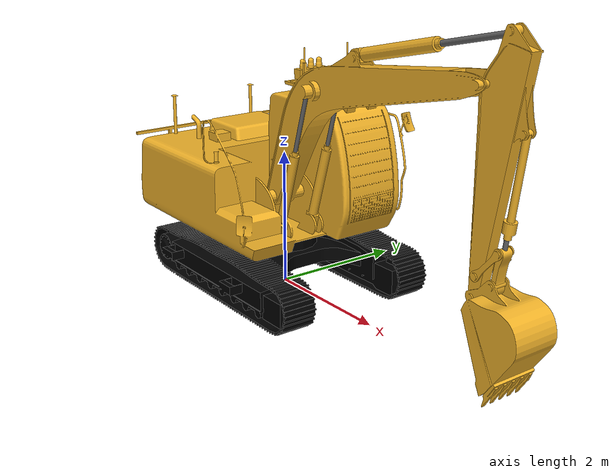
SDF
<?xml version="1.0" ?>
<!--
  Copyright 2024 DeepX, Inc. All rights reserved

  Backhoe excavator model for Sumitomo SH200.
  This model adds sensors to the base one.
-->
<sdf version="1.9">
    <model name='zx120'>
        <include merge="true">
            <uri>zx120_base</uri>
        </include>
    <plugin
            filename="gz-sim-joint-position-controller-system"
            name="gz::sim::systems::JointPositionController">
            <joint_name>body_joint</joint_name>
            <p_gain>1e6</p_gain>
            <i_gain>1</i_gain>
            <d_gain>1e6</d_gain>
            <i_max>10</i_max>
            <i_min>-10</i_min>
            <cmd_max>1e8</cmd_max>
            <cmd_min>-1e8</cmd_min>
        </plugin>

        <plugin
            filename="gz-sim-joint-position-controller-system"
            name="gz::sim::systems::JointPositionController">
            <joint_name>boom_joint</joint_name>
            <p_gain>1e7</p_gain>
            <i_gain>1</i_gain>
            <d_gain>2e6</d_gain>
            <i_max>10</i_max>
            <i_min>-10</i_min>
            <cmd_max>1e8</cmd_max>
            <cmd_min>-1e8</cmd_min>
        </plugin>

        <plugin
            filename="gz-sim-joint-position-controller-system"
            name="gz::sim::systems::JointPositionController">
            <joint_name>arm_joint</joint_name>
            <p_gain>1e8</p_gain>
            <i_gain>0.1</i_gain>
            <d_gain>1e6</d_gain>
            <i_max>10</i_max>
            <i_min>-10</i_min>
            <cmd_max>2.166e9</cmd_max>
            <cmd_min>-1e9</cmd_min>
        </plugin>

        <plugin
            filename="gz-sim-joint-position-controller-system"
            name="gz::sim::systems::JointPositionController">
            <joint_name>bucket_joint</joint_name>
            <p_gain>1e6</p_gain>
            <i_gain>0.5</i_gain>
            <d_gain>1e4</d_gain>
            <i_max>1</i_max>
            <i_min>-1</i_min>
            <cmd_max>2.3657e5</cmd_max>
            <cmd_min>-1e5</cmd_min>
        </plugin>

      <plugin name="gz::sim::systems::TrackedVehicle" filename="gz-sim-tracked-vehicle-system">
         <left_track><link>left_track</link></left_track><!--define-->
         <right_track><link>right_track</link></right_track><!--define-->
         <tracks_separation>2.16</tracks_separation><!--edit-->
         <tracks_height>2.0</tracks_height><!--edit-->
         <steering_efficiency>0.5</steering_efficiency><!--edit-->
      </plugin>

      <plugin name='gz::sim::systems::TrackController' filename='gz-sim-track-controller-system'>
         <link>left_track</link>
         <min_velocity>-3.25</min_velocity>
         <max_velocity>3.25</max_velocity>
      </plugin>
      <plugin name='gz::sim::systems::TrackController' filename='gz-sim-track-controller-system'>
         <link>right_track</link>
         <min_velocity>-3.25</min_velocity>
         <max_velocity>3.25</max_velocity>
      </plugin>

      <!-- Moving Forward: W -->
      <plugin filename="gz-sim-triggered-publisher-system"
              name="gz::sim::systems::TriggeredPublisher">
          <input type="gz.msgs.Int32" topic="/keyboard/keypress">
              <match field="data">87</match>
          </input>
          <output type="gz.msgs.Twist" topic="/model/zx120/cmd_vel">
              linear: {x: 3.25}, angular: {z: 0.0}
          </output>
      </plugin>

      <!-- Moving Backward: X -->
      <plugin filename="gz-sim-triggered-publisher-system"
              name="gz::sim::systems::TriggeredPublisher">
          <input type="gz.msgs.Int32" topic="/keyboard/keypress">
              <match field="data">88</match>
          </input>
          <output type="gz.msgs.Twist" topic="/model/zx120/cmd_vel">
              linear: {x: -3.25}, angular: {z: 0.0}
          </output>
      </plugin>

      <!-- Stop: S -->
      <plugin filename="gz-sim-triggered-publisher-system"
              name="gz::sim::systems::TriggeredPublisher">
          <input type="gz.msgs.Int32" topic="/keyboard/keypress">
              <match field="data">83</match>
          </input>
          <output type="gz.msgs.Twist" topic="/model/zx120/cmd_vel">
              linear: {x: 0.0}, angular: {z: 0.0}
          </output>
      </plugin>

      <!-- Left: A -->
      <plugin filename="gz-sim-triggered-publisher-system"
              name="gz::sim::systems::TriggeredPublisher">
          <input type="gz.msgs.Int32" topic="/keyboard/keypress">
              <match field="data">65</match>
          </input>
          <output type="gz.msgs.Twist" topic="/model/zx120/cmd_vel">
              linear: {x: 0.0}, angular: {z: 1.0}
          </output>
      </plugin>

      <!-- Right: D -->
      <plugin filename="gz-sim-triggered-publisher-system"
              name="gz::sim::systems::TriggeredPublisher">
          <input type="gz.msgs.Int32" topic="/keyboard/keypress">
              <match field="data">68</match>
          </input>
          <output type="gz.msgs.Twist" topic="/model/zx120/cmd_vel">
              linear: {x: 0.0}, angular: {z: -1.0}
          </output>
      </plugin>

      <!-- Forward Left: Q -->
      <plugin filename="gz-sim-triggered-publisher-system"
              name="gz::sim::systems::TriggeredPublisher">
          <input type="gz.msgs.Int32" topic="/keyboard/keypress">
              <match field="data">81</match>
          </input>
          <output type="gz.msgs.Twist" topic="/model/zx120/cmd_vel">
              linear: {x: 3.25}, angular: {z: 1.0}
          </output>
      </plugin>

      <!-- Forward Right: E -->
      <plugin filename="gz-sim-triggered-publisher-system"
              name="gz::sim::systems::TriggeredPublisher">
          <input type="gz.msgs.Int32" topic="/keyboard/keypress">
              <match field="data">69</match>
          </input>
          <output type="gz.msgs.Twist" topic="/model/zx120/cmd_vel">
              linear: {x: 3.25}, angular: {z: -1.0}
          </output>
      </plugin>

      <!-- Back Left: Z -->
      <plugin filename="gz-sim-triggered-publisher-system"
              name="gz::sim::systems::TriggeredPublisher">
          <input type="gz.msgs.Int32" topic="/keyboard/keypress">
              <match field="data">90</match>
          </input>
          <output type="gz.msgs.Twist" topic="/model/zx120/cmd_vel">
              linear: {x: -3.25}, angular: {z: 1.0}
          </output>
      </plugin>

      <!-- Back Right: C -->
      <plugin filename="gz-sim-triggered-publisher-system"
              name="gz::sim::systems::TriggeredPublisher">
          <input type="gz.msgs.Int32" topic="/keyboard/keypress">
              <match field="data">67</match>
          </input>
          <output type="gz.msgs.Twist" topic="/model/zx120/cmd_vel">
              linear: {x: -3.25}, angular: {z: -1.0}
          </output>
      </plugin>

    </model>
</sdf>

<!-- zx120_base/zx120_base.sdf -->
<!--
  Copyright 2024 DeepX, Inc. All rights reserved
-->
<sdf version="1.9">
    <model name='zx120_base'>
      <pose>0 0 0 0 0 0</pose>
      <link name='caterpillar_link'>
        <pose>0 0 0 0 0 0</pose>
        <inertial>
            <pose>-0.155869 0 0.358402 0 0 0</pose>
            <mass>50000</mass>
            <inertia>
              <ixx>1.0</ixx>
              <ixy>0</ixy>
              <ixz>0</ixz>
              <iyy>1.0</iyy>
              <iyz>0</iyz>
              <izz>1.0</izz>
            </inertia>
        </inertial>
        <visual name='caterpillar_visual'>
          <geometry>
            <mesh>
              <uri>./meshes/caterpillar.dae</uri>
            </mesh>
          </geometry>
          <material>
            <ambient>0.0 0.0 0.0 1.0</ambient>
            <diffuse>0.0 0.0 0.0 1.0</diffuse>
            <specular>0.2 0.2 0.2 1.0</specular>
          </material>
        </visual>
      </link>

      <joint name='body_joint' type='revolute'>
        <pose relative_to='caterpillar_link'>0 0 1 0 0 0</pose>
        <parent>caterpillar_link</parent>
        <child>body_link</child>
        <axis>
          <xyz>0 0 1</xyz>
          <limit>
            <!--Effort to avoid velocity control violating the kinematics!-->
            <effort>1.0e8</effort>
            <velocity>0.2</velocity>
          </limit>
        </axis>
      </joint>

    <link name='body_link'>
        <pose relative_to='body_joint'>0 0 0 0 0 0</pose>
        <inertial>
            <pose>-0.501522 0 1.191169 0 0 0</pose>
            <mass>5000</mass>
            <inertia>
              <ixx>1.0</ixx>
              <ixy>0</ixy>
              <ixz>0</ixz>
              <iyy>1.0</iyy>
              <iyz>0</iyz>
              <izz>1.0</izz>
            </inertia>
        </inertial>
        <visual name='body_visual'>
          <geometry>
            <mesh>
              <uri>./meshes/body.dae</uri>
            </mesh>
          </geometry>
          <material>
            <ambient>0.953 0.707 0.164 1.0</ambient>
            <diffuse>0.953 0.707 0.164 1.0</diffuse>
            <specular>0.2 0.2 0.2 1.0</specular>
          </material>
        </visual>
      </link>
      <joint name='boom_joint' type='revolute'>
        <pose relative_to='body_joint'>0.14 -0.16443 0.424 0 1.04719732679 0</pose>
        <parent>body_link</parent>
        <child>boom_link</child>
        <axis>
          <xyz>0 1 0</xyz>
          <limit>
          <!--Effort to avoid velocity control violating the kinematics!-->
            <effort>1.0e8</effort>
            <velocity>0.6159937255</velocity>
            <lower>-0.6981314764</lower>
            <upper>1.29154387088</upper>
          </limit>
        </axis>
      </joint>

    <link name='boom_link'>
        <pose relative_to='boom_joint'>0 0 0 0 -1.185 0</pose>
        <inertial>
            <pose>2.091062 0.055029 0.975556 0 0 0</pose>
            <mass>1010</mass>
            <inertia>
              <ixx>103.9</ixx>
              <ixy>0.0</ixy>
              <ixz>44.8</ixz>
              <iyy>1574.1</iyy>
              <iyz>0.0</iyz>
              <izz>1489.6</izz>
            </inertia>
        </inertial>
        <visual name='boom_visual'>
          <geometry>
            <mesh>
              <uri>./meshes/boom.dae</uri>
            </mesh>
          </geometry>
          <material>
            <ambient>0.953 0.707 0.164 1.0</ambient>
            <diffuse>0.953 0.707 0.164 1.0</diffuse>
            <specular>0.2 0.2 0.2 1.0</specular>
          </material>
        </visual>
        <collision name="boom_collision">
          <pose relative_to="boom_link">0 0 0 0 0 0</pose>
          <geometry>
            <mesh>
              <scale>1 1 1</scale>
              <uri>./meshes/boom.dae</uri>
            </mesh>
          </geometry>
        </collision>
      </link>

      <joint name='boom_cylinder_joint' type='revolute'>
        <pose relative_to='body_joint'>0.494531 -0.162387 0 0 -1.274 0</pose>
        <parent>body_link</parent>
        <child>boom_cylinder_link</child>
        <axis>
          <xyz>0 1 0</xyz>
        </axis>
      </joint>

      <link name='boom_cylinder_link'>
        <pose relative_to='boom_cylinder_joint'>0 0 0 0 0 0</pose>
        <inertial>
            <pose>0.726641 0 0 0 0 0</pose>
            <mass>131.62</mass>
            <inertia>
              <ixx>9.216249</ixx>
              <ixy>0</ixy>
              <ixz>0</ixz>
              <iyy>27.606432</iyy>
              <iyz>0</iyz>
              <izz>36.503907</izz>
            </inertia>
        </inertial>
        <visual name='boom_cylinder_visual'>
          <geometry>
            <mesh>
              <uri>./meshes/boom_cylinders.dae</uri>
            </mesh>
          </geometry>
          <material>
            <ambient>0.953 0.707 0.164 1.0</ambient>
            <diffuse>0.953 0.707 0.164 1.0</diffuse>
            <specular>0.2 0.2 0.2 1.0</specular>
          </material>
        </visual>
      </link>

      <joint name='boom_piston_joint' type='prismatic'>
        <pose relative_to='boom_cylinder_joint'>0.2 0 0 0 0 0</pose>
        <parent>boom_cylinder_link</parent>
        <child>boom_piston_link</child>
        <axis>
          <xyz>1 0 0</xyz>
          <limit>
            <!--Effort to avoid velocity control violating the kinematics!-->
            <effort>1.0e8</effort>
            <lower>-10</lower>
            <upper>10</upper>
          </limit>
        </axis>
      </joint>

      <link name='boom_piston_link'>
        <pose relative_to='boom_piston_joint'>0 0 0 0 0 0</pose>
        <inertial>
            <pose>0.833213 0 0 0 0 0</pose>
            <mass>98.0056</mass>
            <inertia>
              <ixx>6.6836</ixx>
              <ixy>0</ixy>
              <ixz>0</ixz>
              <iyy>22.5995</iyy>
              <iyz>0</iyz>
              <izz>29.2292</izz>
            </inertia>
        </inertial>
        <visual name='boom_piston_visual'>
          <geometry>
            <mesh>
              <uri>./meshes/boom_pistons.dae</uri>
            </mesh>
          </geometry>
          <material>
            <ambient>0.4 0.4 0.4 1.0</ambient>
            <diffuse>0.4 0.4 0.4 1.0</diffuse>
            <specular>1.0 1.0 1.0 1.0</specular>
          </material>
        </visual>
      </link>

      <joint name='boom_piston_constraint' type='ball'>
        <pose relative_to='boom_piston_joint'>1.984 0 0 0 0 0</pose>
        <parent>boom_piston_link</parent>
        <child>boom_link</child>
      </joint>

      <joint name='arm_joint' type='revolute'>
        <pose relative_to='boom_joint'>0 0 4.6 0 -0.89 0</pose>
        <axis>
          <xyz>0 1 0</xyz>
          <limit>
          <!--Effort to avoid velocity control violating the kinematics!-->
            <effort>1.0e8</effort>
            <velocity>0.5</velocity>
            <lower>-1.423598775598</lower>
            <upper>0.705</upper>
          </limit>
        </axis>
        <parent>boom_link</parent>
        <child>arm_link</child>
      </joint>

      <link name='arm_link'>
        <pose relative_to='arm_joint'>0 0 0 0 0 0</pose>
        <inertial>
            <pose>0.774653 0.0 0.171092 0 0 0</pose>
            <mass>480</mass>
            <inertia>
              <ixx>14.24</ixx>
              <ixy>0.0</ixy>
              <ixz>31.36</ixz>
              <iyy>319.92</iyy>
              <iyz>0.0</iyz>
              <izz>309.47</izz>
            </inertia>
        </inertial>
        <visual name='arm_visual'>
          <pose>0 0 0 0 0 0</pose>
          <geometry>
            <mesh>
              <uri>./meshes/arm.dae</uri>
            </mesh>
          </geometry>
          <material>
            <ambient>0.953 0.707 0.164 1.0</ambient>
            <diffuse>0.953 0.707 0.164 1.0</diffuse>
            <specular>0.2 0.2 0.2 1.0</specular>
          </material>
        </visual>
        <collision name="arm_collision">
          <pose relative_to="arm_link">0 0 0 0 0 0</pose>
          <geometry>
            <mesh>
              <scale>1 1 1</scale>
              <uri>./meshes/arm.dae</uri>
            </mesh>
          </geometry>
        </collision>
      </link>

      <joint name='arm_cylinder_joint' type='revolute'>
        <pose relative_to='boom_joint'>-1.09754 0 2.66447 0 -1.28 0</pose>
        <axis>
          <xyz>0 1 0</xyz>
        </axis>
        <parent>boom_link</parent>
        <child>arm_cylinder_link</child>
      </joint>

      <link name='arm_cylinder_link'>
        <pose relative_to='arm_cylinder_joint'>0 0 0 0 0 0</pose>
        <inertial>
            <pose>0.789573 0 0 0 0 0</pose>
            <mass>65.81</mass>
            <inertia>
              <ixx>0.01</ixx>
              <ixy>0</ixy>
              <ixz>0</ixz>
              <iyy>9.95</iyy>
              <iyz>0</iyz>
              <izz>9.95</izz>
            </inertia>
        </inertial>
        <visual name='arm_cylinder_visual'>
          <geometry>
            <mesh>
              <uri>./meshes/arm_cylinder.dae</uri>
            </mesh>
          </geometry>
          <material>
            <ambient>0.953 0.707 0.164 1.0</ambient>
            <diffuse>0.953 0.707 0.164 1.0</diffuse>
            <specular>0.2 0.2 0.2 1.0</specular>
          </material>
        </visual>
      </link>

      <joint name='arm_piston_joint' type='prismatic'>
        <pose relative_to='arm_cylinder_joint'>1.15 0 0 0 0 0</pose>
        <parent>arm_cylinder_link</parent>
        <child>arm_piston_link</child>
        <axis>
          <xyz>1 0 0</xyz>
          <limit>
            <!--Effort to avoid velocity control violating the kinematics!-->
            <effort>1.0e8</effort>
            <lower>-10</lower>
            <upper>10</upper>
          </limit>
        </axis>
      </joint>

      <link name='arm_piston_link'>
        <pose relative_to='arm_piston_joint'>0 0 0 0 0 0</pose>
        <inertial>
            <pose>0.783644 0.0 0.0 0 0 0</pose>
            <mass>48.18</mass>
            <inertia>
              <ixx>0.01</ixx>
              <ixy>0</ixy>
              <ixz>0</ixz>
              <iyy>9.83</iyy>
              <iyz>0</iyz>
              <izz>9.83</izz>
            </inertia>
        </inertial>
        <visual name='arm_piston_visual'>
          <geometry>
            <mesh>
              <uri>./meshes/arm_piston.dae</uri>
            </mesh>
          </geometry>
          <material>
            <ambient>0.4 0.4 0.4 1.0</ambient>
            <diffuse>0.4 0.4 0.4 1.0</diffuse>
            <specular>1.0 1.0 1.0 1.0</specular>
          </material>
        </visual>
      </link>

      <joint name='arm_piston_constraint' type='ball'>
        <pose relative_to='arm_piston_joint'>1.25 0 0 0 0 0</pose>
        <parent>arm_piston_link</parent>
        <child>arm_link</child>
      </joint>

      <joint name='bucket_joint' type='revolute'>
        <pose relative_to='arm_joint'>0.356544 0 -2.46213 0 -2.897 0</pose>
        <axis>
          <xyz>0 1 0</xyz>
          <limit>
          <!--Effort to avoid velocity control violating the kinematics!-->
            <effort>1.0e8</effort>
            <velocity>0.5</velocity>
            <lower>-0.1</lower>
            <upper>2.97177</upper>
          </limit>
        </axis>
        <parent>arm_link</parent>
        <child>bucket_link</child>
      </joint>

      <link name='bucket_link'>
        <pose relative_to='bucket_joint'>0 0 0 0 0 0</pose>
        <inertial>
            <pose>0.560165 -0.000003 0.267409 0 0 0</pose>
            <mass>351.5</mass>
            <inertia>
              <ixx>51.39</ixx>
              <ixy>0.0</ixy>
              <ixz>10.40</ixz>
              <iyy>77.64</iyy>
              <iyz>0.0</iyz>
              <izz>91.99</izz>
            </inertia>
        </inertial>
        <visual name='bucket_visual'>
          <pose>0 0 0 0 0 0</pose>
          <geometry>
            <mesh>
              <uri>./meshes/bucket.dae</uri>
            </mesh>
          </geometry>
          <material>
            <ambient>0.953 0.707 0.164 1.0</ambient>
            <diffuse>0.953 0.707 0.164 1.0</diffuse>
            <specular>0.2 0.2 0.2 1.0</specular>
          </material>
        </visual>
        <collision name="bucket_collision">
          <pose relative_to="bucket_link">0 0 0 0 0 0</pose>
          <geometry>
            <mesh>
              <scale>1 1 1</scale>
              <uri>./meshes/bucket.dae</uri>
            </mesh>
          </geometry>
        </collision>
      </link>

      <joint name='bucket_end_joint' type='fixed'>
        <pose relative_to="bucket_joint">0 0 1.23 0 0.872664625997 0</pose>
        <parent>bucket_link</parent>
        <child>bucket_end_link</child>
      </joint>

        <link name='bucket_end_link'>
          <pose relative_to="bucket_end_joint">0 0 0 0 0 0</pose>
          <inertial>
            <mass>0.001</mass>
            <inertia>
              <ixx>1e-6</ixx>
              <ixy>0.0</ixy>
              <ixz>0.0</ixz>
              <iyy>1e-6</iyy>
              <iyz>0.0</iyz>
              <izz>1e-6</izz>
            </inertia>
          </inertial>
        </link>

        <joint name='bucket_cylinder_joint' type='revolute'>
        <pose relative_to='arm_joint'>0.610882 0 -0.34393 0 1.5533430343 0</pose>
        <axis>
          <xyz>0 1 0</xyz>
        </axis>
        <parent>arm_link</parent>
        <child>bucket_cylinder_link</child>
      </joint>

      <link name='bucket_cylinder_link'>
        <pose relative_to='bucket_cylinder_joint'>0 0 0 0 0 0</pose>
        <inertial>
            <pose>0.726641 0.00003 0.0 0 0 0</pose>
            <mass>65.81</mass>
            <inertia>
              <ixx>0.01</ixx>
              <ixy>0</ixy>
              <ixz>0</ixz>
              <iyy>9.95</iyy>
              <iyz>0</iyz>
              <izz>9.95</izz>
            </inertia>
        </inertial>
        <visual name='bucket_cylinder_visual'>
          <geometry>
            <mesh>
              <uri>./meshes/bucket_cylinder.dae</uri>
            </mesh>
          </geometry>
          <material>
            <ambient>0.953 0.707 0.164 1.0</ambient>
            <diffuse>0.953 0.707 0.164 1.0</diffuse>
            <specular>0.2 0.2 0.2 1.0</specular>
          </material>
        </visual>
      </link>

      <joint name='bucket_piston_joint' type='prismatic'>
        <pose relative_to='bucket_cylinder_joint'>0.256193 0 0 0 0 0</pose>
        <axis>
          <xyz>1 0 0</xyz>
          <limit>
            <!--Effort to avoid velocity control violating the kinematics!-->
            <effort>1.0e8</effort>
            <lower>-10</lower>
            <upper>10</upper>
          </limit>
        </axis>
        <parent>bucket_cylinder_link</parent>
        <child>bucket_piston_link</child>
      </joint>

      <link name='bucket_piston_link'>
        <pose relative_to='bucket_piston_joint'>0 0 0 0 0 0</pose>
        <inertial>
            <pose>0.818208 0.0 0.0 0 0 0</pose>
            <mass>48.19</mass>
            <inertia>
              <ixx>0.01</ixx>
              <ixy>0</ixy>
              <ixz>0</ixz>
              <iyy>9.83</iyy>
              <iyz>0</iyz>
              <izz>9.83</izz>
            </inertia>
        </inertial>
        <visual name='bucket_piston_visual'>
          <geometry>
            <mesh>
              <uri>./meshes/bucket_piston.dae</uri>
            </mesh>
          </geometry>
          <material>
            <ambient>0.4 0.4 0.4 1.0</ambient>
            <diffuse>0.4 0.4 0.4 1.0</diffuse>
            <specular>1.0 1.0 1.0 1.0</specular>
          </material>
        </visual>
      </link>

      <joint name='bucket_piston_constraint' type='ball'>
        <pose relative_to='bucket_piston_joint'>1.195 0 0 0 0 0</pose>
        <parent>bucket_piston_link</parent>
        <child>bucket_h_linkage_link</child>
      </joint>

      <joint name='bucket_side_linkage_joint' type='revolute'>
        <pose relative_to='arm_joint'>0.337582 0 -2.20266 0 -0.9948 0</pose>
        <axis>
          <xyz>0 -1 0</xyz>
        </axis>
        <parent>arm_link</parent>
        <child>bucket_side_linkage_link</child>
      </joint>

      <link name='bucket_side_linkage_link'>
        <pose relative_to='bucket_side_linkage_joint'>0 0 0 0 0 0</pose>
        <inertial>
            <pose>0.290049 0.0 0.0 0 0 0</pose>
            <mass>16.3471</mass>
            <inertia>
              <ixx>0.2849</ixx>
              <ixy>0</ixy>
              <ixz>0</ixz>
              <iyy>0.7623</iyy>
              <iyz>0</iyz>
              <izz>1.0241</izz>
            </inertia>
        </inertial>
        <visual name='bucket_side_linkage_visual'>
          <geometry>
            <mesh>
              <uri>./meshes/bucket_linkages_side.dae</uri>
            </mesh>
          </geometry>
          <material>
            <ambient>0.953 0.707 0.164 1.0</ambient>
            <diffuse>0.953 0.707 0.164 1.0</diffuse>
            <specular>0.2 0.2 0.2 1.0</specular>
          </material>
        </visual>
      </link>

      <joint name='bucket_h_linkage_joint' type='revolute'>
        <pose relative_to='bucket_side_linkage_joint'>0.492806 0 -0.00206 0 2.6 0</pose>
        <axis>
          <xyz>0 1 0</xyz>
        </axis>
        <parent>bucket_side_linkage_link</parent>
        <child>bucket_h_linkage_link</child>
      </joint>

      <link name='bucket_h_linkage_link'>
        <pose relative_to='bucket_h_linkage_joint'>0 0 0 0 0 0</pose>
        <inertial>
            <pose>0.254500 0.0 0.0 0 0 0</pose>
            <mass>57.45</mass>
            <inertia>
              <ixx>0.29</ixx>
              <ixy>0.0</ixy>
              <ixz>0.0</ixz>
              <iyy>1.63</iyy>
              <iyz>0.0</iyz>
              <izz>1.88</izz>
            </inertia>
        </inertial>
        <visual name='bucket_h_linkage_visual'>
          <geometry>
            <mesh>
              <uri>./meshes/bucket_linkage_H_link.dae</uri>
            </mesh>
          </geometry>
          <material>
            <ambient>0.953 0.707 0.164 1.0</ambient>
            <diffuse>0.953 0.707 0.164 1.0</diffuse>
            <specular>0.2 0.2 0.2 1.0</specular>
          </material>
        </visual>
      </link>

      <joint name='bucket_linkage_constraint' type='ball'>
        <pose relative_to='bucket_h_linkage_joint'>0.42 0 0 0 0 0</pose>
        <parent>bucket_h_linkage_link</parent>
        <child>bucket_link</child>
      </joint>

      <link name='left_track'>
         <pose>0 0.965 0.35 0 0 0</pose>
         <gravity>1</gravity>
         <kinematic>0</kinematic>
         <!-- Debug visual -->

         <collision name='left_track_collision'>
            <pose>0 0 0 0 0 0</pose>
            <geometry>
               <box>
                  <size>3.6 0.6 0.7</size>
               </box>
            </geometry>
            <surface>
               <friction>
                  <ode>
                     <mu>0.7</mu>
                     <mu2>150</mu2>
                     <fdir1>0 1 0</fdir1>
                  </ode>
               </friction>
            </surface>
         </collision>
      </link>

      <link name='right_track'>
         <pose>0 -0.965 0.35 0 0 0</pose>
         <gravity>1</gravity>
         <kinematic>0</kinematic>
         <!-- Debug visual -->

         <collision name='right_track_collision'>
            <pose>0 0 0 0 0 0</pose>
            <geometry>
               <box>
                  <size>3.6 0.6 0.7</size>
               </box>
            </geometry>
            <surface>
               <friction>
                  <ode>
                     <mu>0.7</mu>
                     <mu2>150</mu2>
                     <fdir1>0 1 0</fdir1>
                  </ode>
               </friction>
            </surface>
         </collision>
      </link>

      <joint name='left_track_j' type='fixed'>
         <child>left_track</child>
         <parent>caterpillar_link</parent>
      </joint>
      <joint name='right_track_j' type='fixed'>
         <child>right_track</child>
         <parent>caterpillar_link</parent>
      </joint>

    </model>
</sdf>
